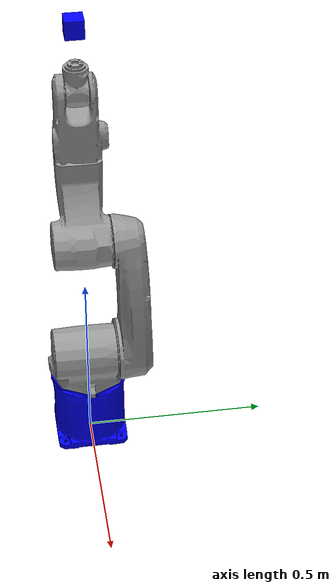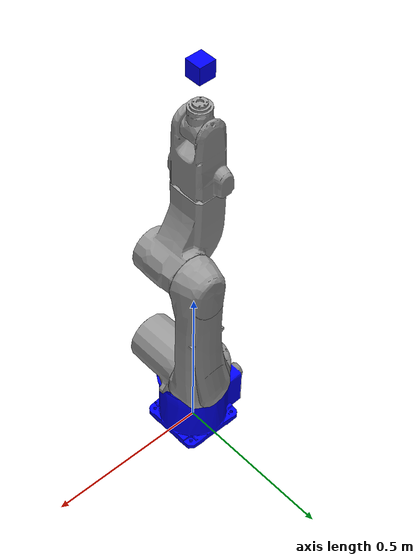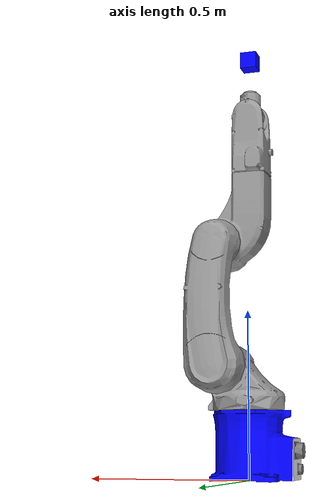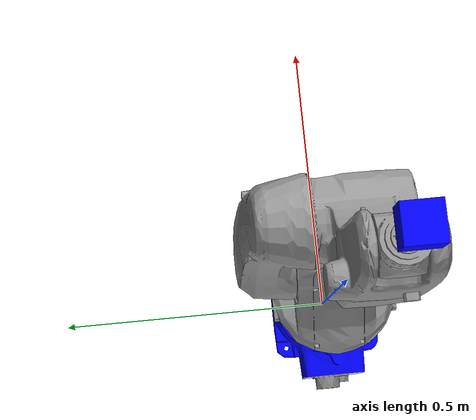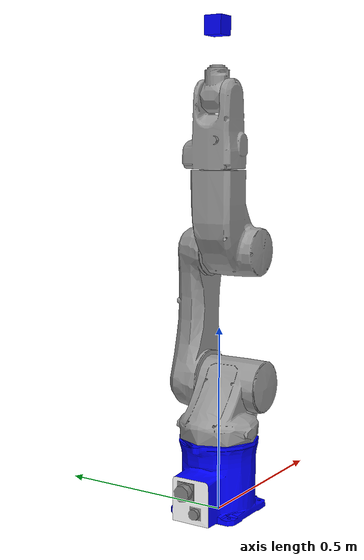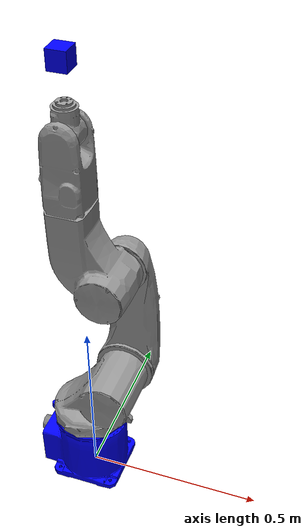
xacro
<?xml version="1.0" encoding="UTF-8"?>
<robot name="vanilla_with_structured_light" xmlns:xacro="http://www.ros.org/wiki/xacro">
    <xacro:arg name="sim" default="True" />

    <gazebo>
        <plugin filename="libgazebo_ros_control.so" name="gazebo_ros_control">
            <robotNamespace>/vanilla_with_structured_light</robotNamespace>
        </plugin>
    </gazebo>

    <xacro:include filename="$(find denso_robot_descriptions)/vs6577_description/urdf/vs6577.urdf.xacro"/>

    <xacro:include filename="$(find add_post_pro_robot)/urdf/simple_depth_camera.urdf.xacro"/>

</robot>

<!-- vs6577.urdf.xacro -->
<robot name="vs6577" xmlns:xacro="http://www.ros.org/wiki/xacro">

<xacro:include filename="$(find denso_robot_descriptions)/vs6577_description/urdf/vs6577.transmission.xacro"/>

	<gazebo>
        <plugin name="gazebo_ros_control" filename="libgazebo_ros_control.so">
            <robotNamespace>/vs6577</robotNamespace>
			<legacyModeNS>true</legacyModeNS>
        </plugin>
    </gazebo>

	<link name="world"/>

	<joint name="joint_w" type="fixed">
		<parent link="world"/>
		<child link="base_link"/>
		<origin xyz="0 0 0"/>
	</joint>

	<link name="base_link">
		<visual>
			<origin rpy="0 0 0" xyz="0 0 0"/>
			<geometry>
				<mesh filename="package://denso_robot_descriptions/vs6577_description/meshes/base_link.dae" scale="1 1 1"/>
			</geometry>
		</visual>
		<collision>
			<origin rpy="0 0 0" xyz="0 0 0"/>
			<geometry>
				<mesh filename="package://denso_robot_descriptions/vs6577_description/meshes/base_link.dae" scale="1 1 1"/>
			</geometry>
		</collision>
		<inertial>
			<mass value="1"/>
			<origin rpy="0.000000 0.000000 0.000000" xyz="0.000000 0.000000 0.000000"/>
			<inertia ixx="1" ixy="0" ixz="0" iyy="1" iyz="0" izz="1"/>
		</inertial>
	</link>
	<link name="J1">
		<visual>
			<origin rpy="0 0 0" xyz="0 0 0"/>
			<geometry>
				<mesh filename="package://denso_robot_descriptions/vs6577_description/meshes/J1.dae" scale="1 1 1"/>
			</geometry>
		</visual>
		<collision>
			<origin rpy="0 0 0" xyz="0 0 0"/>
			<geometry>
				<mesh filename="package://denso_robot_descriptions/vs6577_description/meshes/J1.dae" scale="1 1 1"/>
			</geometry>
		</collision>
		<inertial>
			<mass value="1"/>
			<origin rpy="0.000000 0.000000 0.000000" xyz="0.000000 0.000000 0.000000"/>
			<inertia ixx="1" ixy="0" ixz="0" iyy="1" iyz="0" izz="1"/>
		</inertial>
	</link>
	<link name="J2">
		<visual>
			<origin rpy="0 0 0" xyz="0 0 0"/>
			<geometry>
				<mesh filename="package://denso_robot_descriptions/vs6577_description/meshes/J2.dae" scale="1 1 1"/>
			</geometry>
		</visual>
		<collision>
			<origin rpy="0 0 0" xyz="0 0 0"/>
			<geometry>
				<mesh filename="package://denso_robot_descriptions/vs6577_description/meshes/J2.dae" scale="1 1 1"/>
			</geometry>
		</collision>
		<inertial>
			<mass value="1"/>
			<origin rpy="0.000000 0.000000 0.000000" xyz="0.000000 0.000000 0.000000"/>
			<inertia ixx="1" ixy="0" ixz="0" iyy="1" iyz="0" izz="1"/>
		</inertial>
	</link>
	<link name="J3">
		<visual>
			<origin rpy="0 0 0" xyz="0 0 0"/>
			<geometry>
				<mesh filename="package://denso_robot_descriptions/vs6577_description/meshes/J3.dae" scale="1 1 1"/>
			</geometry>
		</visual>
		<collision>
			<origin rpy="0 0 0" xyz="0 0 0"/>
			<geometry>
				<mesh filename="package://denso_robot_descriptions/vs6577_description/meshes/J3.dae" scale="1 1 1"/>
			</geometry>
		</collision>
		<inertial>
			<mass value="1"/>
			<origin rpy="0.000000 0.000000 0.000000" xyz="0.000000 0.000000 0.000000"/>
			<inertia ixx="1" ixy="0" ixz="0" iyy="1" iyz="0" izz="1"/>
		</inertial>
	</link>
	<link name="J4">
		<visual>
			<origin rpy="0 0 0" xyz="0 0 0"/>
			<geometry>
				<mesh filename="package://denso_robot_descriptions/vs6577_description/meshes/J4.dae" scale="1 1 1"/>
			</geometry>
		</visual>
		<collision>
			<origin rpy="0 0 0" xyz="0 0 0"/>
			<geometry>
				<mesh filename="package://denso_robot_descriptions/vs6577_description/meshes/J4.dae" scale="1 1 1"/>
			</geometry>
		</collision>
		<inertial>
			<mass value="1"/>
			<origin rpy="0.000000 0.000000 0.000000" xyz="0.000000 0.000000 0.000000"/>
			<inertia ixx="1" ixy="0" ixz="0" iyy="1" iyz="0" izz="1"/>
		</inertial>
	</link>
	<link name="J5">
		<visual>
			<origin rpy="0 0 0" xyz="0 0 0"/>
			<geometry>
				<mesh filename="package://denso_robot_descriptions/vs6577_description/meshes/J5.dae" scale="1 1 1"/>
			</geometry>
		</visual>
		<collision>
			<origin rpy="0 0 0" xyz="0 0 0"/>
			<geometry>
				<mesh filename="package://denso_robot_descriptions/vs6577_description/meshes/J5.dae" scale="1 1 1"/>
			</geometry>
		</collision>
		<inertial>
			<mass value="1"/>
			<origin rpy="0.000000 0.000000 0.000000" xyz="0.000000 0.000000 0.000000"/>
			<inertia ixx="1" ixy="0" ixz="0" iyy="1" iyz="0" izz="1"/>
		</inertial>
	</link>
	<link name="J6">
		<visual>
			<origin rpy="0 0 0" xyz="0 0 0"/>
			<geometry>
				<mesh filename="package://denso_robot_descriptions/vs6577_description/meshes/J6.dae" scale="1 1 1"/>
			</geometry>
		</visual>
		<collision>
			<origin rpy="0 0 0" xyz="0 0 0"/>
			<geometry>
				<mesh filename="package://denso_robot_descriptions/vs6577_description/meshes/J6.dae" scale="1 1 1"/>
			</geometry>
		</collision>
		<inertial>
			<mass value="1"/>
			<origin rpy="0.000000 0.000000 0.000000" xyz="0.000000 0.000000 0.000000"/>
			<inertia ixx="1" ixy="0" ixz="0" iyy="1" iyz="0" izz="1"/>
		</inertial>
	</link>

	<gazebo reference="base_link">
		<material>Gazebo/CoM</material>
	</gazebo>
	<gazebo reference="J1">
		<material>Gazebo/Gray</material>
	</gazebo>
	<gazebo reference="J2">
		<material>Gazebo/Gray</material>
	</gazebo>
	<gazebo reference="J3">
		<material>Gazebo/Gray</material>
	</gazebo>
	<gazebo reference="J4">
		<material>Gazebo/Gray</material>
	</gazebo>
	<gazebo reference="J5">
		<material>Gazebo/Gray</material>
	</gazebo>
	<gazebo reference="J6">
		<material>Gazebo/Gray</material>
	</gazebo>
	<gazebo reference="EEF_tool_mount">
		<material>Gazebo/CoM</material>
	</gazebo>

	<gazebo>
		<gravity>False</gravity>
	</gazebo>
	<joint name="joint_1" type="revolute">
		<parent link="base_link"/>
		<child link="J1"/>
		<origin rpy="0.000000 0.000000 0.000000" xyz="0.000000 0.000000 0.000000"/>
		<axis xyz="-0.000000 -0.000000 1.000000"/>
		<limit effort="100" lower="-2.96706" upper="2.96706" velocity="1"/>
		<dynamics damping="0" friction="0"/>
	</joint>

	<joint name="joint_2" type="revolute">
		<parent link="J1"/>
		<child link="J2"/>
		<origin rpy="0.000000 0.000000 0.000000" xyz="0.075000 0.000000 0.335000"/>
		<axis xyz="-0.000000 1.000000 -0.000000"/>
		<limit effort="100" lower="-1.745329" upper="2.356194" velocity="1"/>
		<dynamics damping="0" friction="0"/>
	</joint>

	<joint name="joint_3" type="revolute">
		<parent link="J2"/>
		<child link="J3"/>
		<origin rpy="0.000000 0.000000 0.000000" xyz="0.000000 0.000000 0.365000"/>
		<axis xyz="-0.000000 1.000000 -0.000000"/>
		<limit effort="100" lower="-2.076942" upper="2.949606" velocity="1"/>
		<dynamics damping="0" friction="0"/>
	</joint>

	<joint name="joint_4" type="revolute">
		<parent link="J3"/>
		<child link="J4"/>
		<origin rpy="0.000000 0.000000 0.000000" xyz="-0.090000 0.000000 -0.700000"/>
		<axis xyz="-0.000000 -0.000000 1.000000"/>
		<limit effort="100" lower="-3.316126" upper="3.316126" velocity="1"/>
		<dynamics damping="0" friction="0"/>
	</joint>

	<joint name="joint_5" type="revolute">
		<parent link="J4"/>
		<child link="J5"/>
		<origin rpy="0.000000 0.000000 0.000000" xyz="0.000000 0.000000 1.105000"/>
		<axis xyz="-0.000000 1.000000 -0.000000"/>
		<limit effort="100" lower="-2.094395" upper="2.094395" velocity="1"/>
		<dynamics damping="0" friction="0"/>
	</joint>

	<joint name="joint_6" type="revolute">
		<parent link="J5"/>
		<child link="J6"/>
		<origin rpy="0.000000 0.000000 0.000000" xyz="0.000000 0.000000 0.080000"/>
		<axis xyz="-0.000000 -0.000000 1.000000"/>
		<limit effort="100" lower="-6.283185" upper="6.283185" velocity="1"/>
		<dynamics damping="0" friction="0"/>
	</joint>

</robot>

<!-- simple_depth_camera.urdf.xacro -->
<robot name="tool" xmlns:xacro="http://www.ros.org/wiki/xacro">
	<joint name="J6_to_camera_joint" type="fixed">
    <parent link="J6"/>
    <child link="depth_camera_link"/>
    <origin xyz="0 0 0.1" rpy="0 0 0"/> <!-- Adjust xyz values to position the camera as desired -->
</joint>

<link name="depth_camera_link">
    <inertial>
        <origin xyz="0 0 0" rpy="0 0 0"/>
        <mass value="0.1"/> <!-- Adjust as needed -->
        <inertia ixx="1.0e-6" ixy="0" ixz="0" iyy="1.0e-6" iyz="0" izz="1.0e-6"/> <!-- Simplified, adjust as needed -->
    </inertial>

    <visual>
    <origin xyz="0 0 0" rpy="0 0 0"/>
    <geometry>
        <box size="0.05 0.05 0.05"/> <!-- Size of the box representing the camera; adjust as needed -->
    </geometry>
    <material name="blue"> <!-- Simple color material, adjust as needed -->
        <color rgba="0 0 1 1"/> <!-- RGBA: blue -->
    </material>
</visual>

</link>

<gazebo reference="depth_camera_link">
    <sensor name="depth_camera_sensor" type="depth">
        <always_on>true</always_on>
        <update_rate>30</update_rate> <!-- 30 Hz, adjust as needed -->
        <visualize>true</visualize>
        <camera>
            <horizontal_fov>1.047</horizontal_fov> <!-- 60 degrees in radians, adjust as needed -->
            <image>
                <width>640</width>
                <height>480</height>
                <format>R8G8B8</format>
            </image>
            <clip>
                <near>0.1</near>
                <far>10</far>
            </clip>
        </camera>
        <plugin filename="libgazebo_ros_camera.so" name="gazebo_ros_depth_camera_controller">
            <alwaysOn>true</alwaysOn>
            <updateRate>30</updateRate>
            <cameraName>depth_camera</cameraName>
            <imageTopicName>depth_image_raw</imageTopicName>
            <cameraInfoTopicName>depth_camera_info</cameraInfoTopicName>
            <frameName>depth_camera_link</frameName>
            <robotNamespace>/vanilla_with_structured_light</robotNamespace>
        </plugin>
    </sensor>
</gazebo>

</robot>
